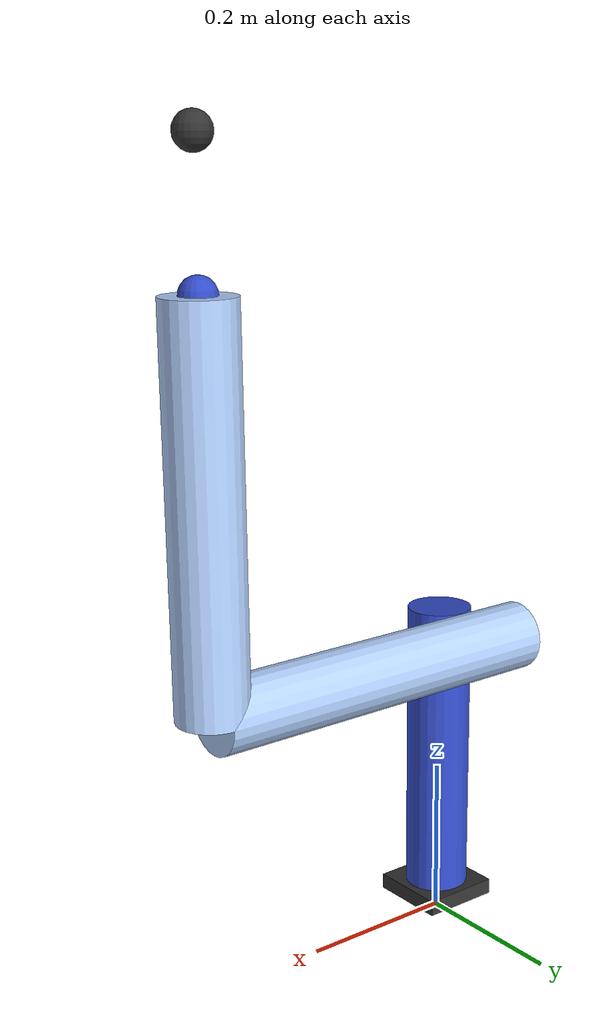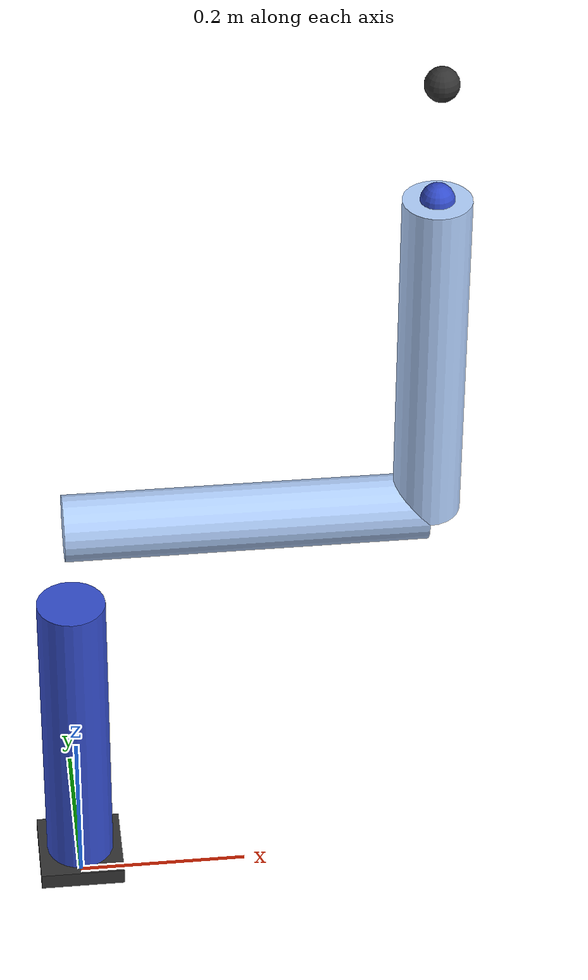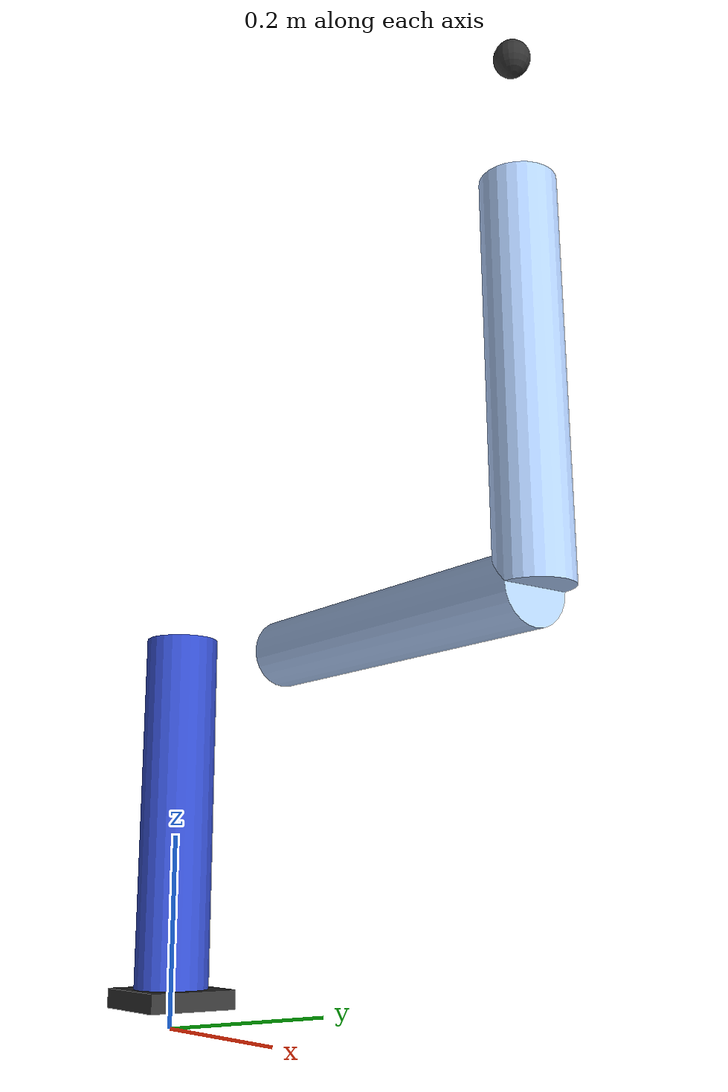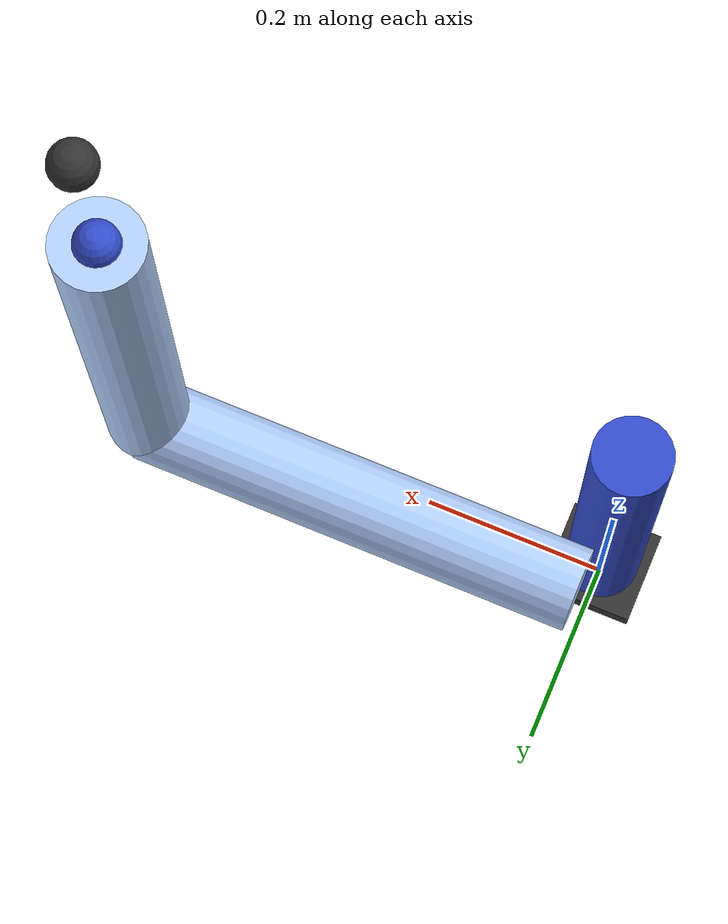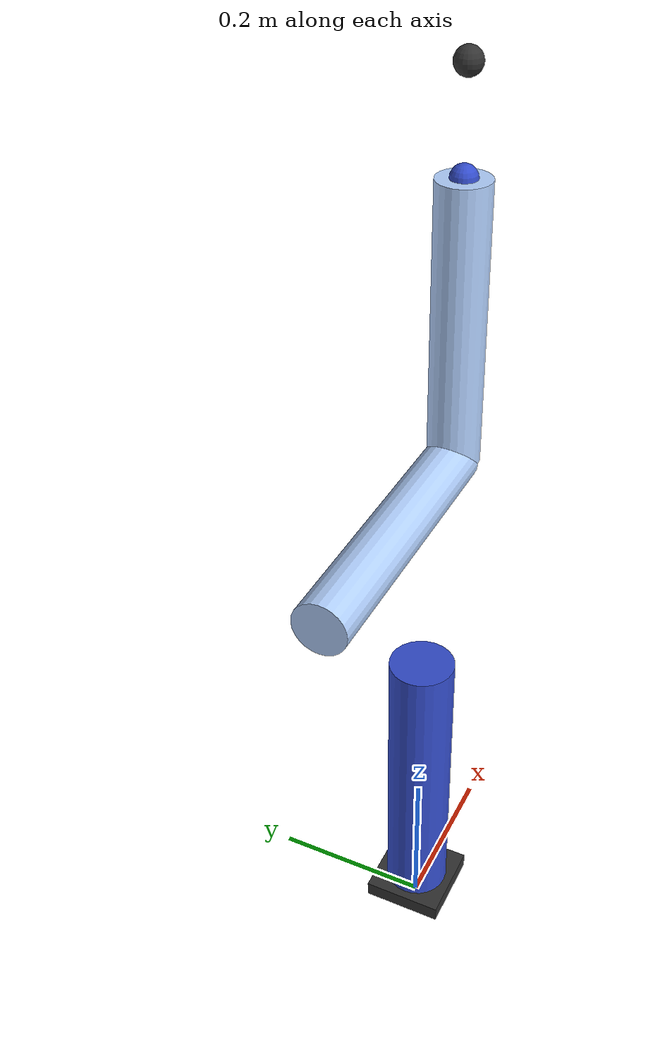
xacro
<?xml version="1.0"?>
<robot xmlns:xacro="http://www.ros.org/wiki/xacro" name="my_arm">
    <xacro:arg name="initial_positions_file" default="initial_positions.yaml" />

    <!-- Import my_arm urdf file -->
    <xacro:include filename="$(find my_arm_description)/urdf/my_arm_puma.urdf.xacro" />

    <!-- Import control_xacro -->
    <xacro:include filename="my_arm.ros2_control.xacro" />

    <xacro:my_arm_ros2_control name="FakeSystem" initial_positions_file="$(arg initial_positions_file)"/>

</robot>

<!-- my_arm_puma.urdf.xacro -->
<robot xmlns:xacro="http://ros.org/wiki/xacro" name="my_arm">

  <xacro:arg name="ros2_control_params" default=""/>

  <!-- =========================
       Parameters
       ========================= -->
  <xacro:arg name="L1" default="0.4"/>
  <xacro:arg name="L2" default="0.4318"/>
  <xacro:arg name="L3" default="0.43208"/>
  <xacro:arg name="d3" default="0.1397"/>

  <!-- Spherical wrist: set these to 0 -->
  <xacro:arg name="L4" default="0.0"/>
  <xacro:arg name="L5" default="0.0"/>
  <xacro:arg name="L6" default="0.0"/>

  <!-- Sizes -->
  <xacro:arg name="r_link" default="0.04"/>
  <xacro:arg name="base_x" default="0.10"/>
  <xacro:arg name="base_y" default="0.10"/>
  <xacro:arg name="base_z" default="0.02"/>

  <!-- Masses (kg) -->
  <xacro:arg name="m_base" default="1.0"/>
  <xacro:arg name="m_link" default="0.3"/>
  <xacro:arg name="m_wrist" default="0.05"/>

  <!-- Joint limits -->
  <xacro:arg name="joint_vel" default="2.0"/>
  <xacro:arg name="joint_effort" default="5.0"/>

  <xacro:property name="L1" value="$(arg L1)"/>
  <xacro:property name="L2" value="$(arg L2)"/>
  <xacro:property name="L3" value="$(arg L3)"/>
  <xacro:property name="d3" value="$(arg d3)"/>
  <xacro:property name="r"  value="$(arg r_link)"/>

  <xacro:property name="r_wrist" value="${0.5 * $(arg r_link)}"/>

  <!-- =========================
       Inertial macros
       ========================= -->
  <xacro:macro name="inertial_box" params="mass x y z">
    <inertial>
      <mass value="${mass}"/>
      <inertia ixx="${mass*(y*y + z*z)/12.0}" ixy="0.0" ixz="0.0"
               iyy="${mass*(x*x + z*z)/12.0}" iyz="0.0"
               izz="${mass*(x*x + y*y)/12.0}"/>
    </inertial>
  </xacro:macro>

  <xacro:macro name="inertial_cylinder_z" params="mass radius length">
    <inertial>
      <mass value="${mass}"/>
      <inertia ixx="${mass*(3*radius*radius + length*length)/12.0}" ixy="0.0" ixz="0.0"
               iyy="${mass*(3*radius*radius + length*length)/12.0}" iyz="0.0"
               izz="${mass*(radius*radius)/2.0}"/>
    </inertial>
  </xacro:macro>

  <xacro:macro name="inertial_cylinder_x" params="mass radius length">
    <inertial>
      <mass value="${mass}"/>
      <inertia ixx="${mass*(radius*radius)/2.0}" ixy="0.0" ixz="0.0"
               iyy="${mass*(3*radius*radius + length*length)/12.0}" iyz="0.0"
               izz="${mass*(3*radius*radius + length*length)/12.0}"/>
    </inertial>
  </xacro:macro>

  <xacro:macro name="inertial_sphere" params="mass radius">
    <inertial>
      <mass value="${mass}"/>
      <inertia ixx="${0.4*mass*radius*radius}" ixy="0.0" ixz="0.0"
               iyy="${0.4*mass*radius*radius}" iyz="0.0"
               izz="${0.4*mass*radius*radius}"/>
    </inertial>
  </xacro:macro>

  <!-- =========================
       Materials
       ========================= -->
  <material name="dark"><color rgba="0.2 0.2 0.2 1.0"/></material>
  <material name="pale_blue"><color rgba="0.70 0.82 1.00 1.0"/></material>
  <material name="blue"><color rgba="0.2 0.3 0.8 1.0"/></material>

  <!-- =========================
       World + base
       ========================= -->
  <link name="world"/>

  <joint name="world_to_base" type="fixed">
    <parent link="world"/>
    <child link="base_link"/>
    <origin xyz="0 0 $(arg base_z)" rpy="0 0 0"/>
  </joint>

  <link name="base_link">
    <visual>
      <origin xyz="0 0 ${$(arg base_z)/2.0}" rpy="0 0 0"/>
      <geometry><box size="$(arg base_x) $(arg base_y) $(arg base_z)"/></geometry>
      <material name="dark"/>
    </visual>
    <collision>
      <origin xyz="0 0 ${$(arg base_z)/2.0}" rpy="0 0 0"/>
      <geometry><box size="$(arg base_x) $(arg base_y) $(arg base_z)"/></geometry>
    </collision>
    <xacro:inertial_box mass="$(arg m_base)" x="$(arg base_x)" y="$(arg base_y)" z="$(arg base_z)"/>
  </link>

  <!-- =========================
       Links (KINEMATIC frames are simple; visuals oriented for nice zero pose)
       ========================= -->

  <!-- link1: cylinder along +Z -->
  <link name="link1">
    <visual>
      <origin xyz="0 0 ${L1/2.0}" rpy="0 0 0"/>
      <geometry><cylinder radius="${r}" length="${L1}"/></geometry>
      <material name="blue"/>
    </visual>
    <collision>
      <origin xyz="0 0 ${L1/2.0}" rpy="0 0 0"/>
      <geometry><cylinder radius="${r}" length="${L1}"/></geometry>
    </collision>
    <xacro:inertial_cylinder_z mass="$(arg m_link)" radius="${r}" length="${L1}"/>
  </link>

  <!-- link2: visually along +X, but link frame is NOT rotated (kinematics stay simple) -->
  <link name="link2">
    <visual>
      <origin xyz="${L2/2.0} 0 0" rpy="0 1.57079632679 0"/>
      <geometry><cylinder radius="${r}" length="${L2}"/></geometry>
      <material name="pale_blue"/>
    </visual>
    <collision>
      <origin xyz="${L2/2.0} 0 0" rpy="0 1.57079632679 0"/>
      <geometry><cylinder radius="${r}" length="${L2}"/></geometry>
    </collision>
    <xacro:inertial_cylinder_x mass="$(arg m_link)" radius="${r}" length="${L2}"/>
  </link>

  <!-- link3: visually along +Z -->
  <link name="link3">
    <visual>
      <origin xyz="0 0 ${L3/2.0}" rpy="0 0 0"/>
      <geometry><cylinder radius="${r}" length="${L3}"/></geometry>
      <material name="pale_blue"/>
    </visual>
    <collision>
      <origin xyz="0 0 ${L3/2.0}" rpy="0 0 0"/>
      <geometry><cylinder radius="${r}" length="${L3}"/></geometry>
    </collision>
    <xacro:inertial_cylinder_z mass="$(arg m_link)" radius="${r}" length="${L3}"/>
  </link>

  <!-- Wrist links: spheres -->
  <xacro:macro name="wrist_link" params="name mass mat">
    <link name="${name}">
      <visual>
        <origin xyz="0 0 0" rpy="0 0 0"/>
        <geometry><sphere radius="${r_wrist}"/></geometry>
        <material name="${mat}"/>
      </visual>
      <collision>
        <origin xyz="0 0 0" rpy="0 0 0"/>
        <geometry><sphere radius="${r_wrist}"/></geometry>
      </collision>
      <xacro:inertial_sphere mass="${mass}" radius="${r_wrist}"/>
    </link>
  </xacro:macro>

  <xacro:wrist_link name="link4" mass="$(arg m_wrist)" mat="blue"/>
  <xacro:wrist_link name="link5" mass="$(arg m_wrist)" mat="blue"/>
  <xacro:wrist_link name="link6" mass="$(arg m_wrist)" mat="blue"/>

  <!-- =========================
       Joints (KINEMATICALLY SIMPLE)
       ========================= -->

  <!-- joint1: base yaw about +Z -->
  <joint name="joint1" type="revolute">
    <parent link="base_link"/>
    <child link="link1"/>
    <origin xyz="0 0 0" rpy="0 0 0"/>
    <axis xyz="0 0 1"/>
    <limit lower="-3.14159" upper="3.14159" effort="$(arg joint_effort)" velocity="$(arg joint_vel)"/>
    <dynamics damping="0.2" friction="0.0"/>
  </joint>

  <!-- joint2: shoulder pitch about +Y, located at top of link1 with lateral offset d3 -->
  <!-- IMPORTANT: rpy = 0 0 0 to keep kinematics consistent with analytic IK -->
  <joint name="joint2" type="revolute">
    <parent link="link1"/>
    <child link="link2"/>
    <origin xyz="0 ${d3} ${L1}" rpy="0 0 0"/>
    <axis xyz="0 1 0"/>
    <limit lower="-3.14159" upper="3.14159" effort="$(arg joint_effort)" velocity="$(arg joint_vel)"/>
    <dynamics damping="0.2" friction="0.0"/>
  </joint>

  <!-- joint3: elbow pitch about +Y at end of link2 (along +X) -->
  <!-- IMPORTANT: origin along +X because link2 is modeled as translating along +X in kinematics -->
  <joint name="joint3" type="revolute">
    <parent link="link2"/>
    <child link="link3"/>
    <origin xyz="${L2} 0 0" rpy="0 0 0"/>
    <axis xyz="0 1 0"/>
    <limit lower="-3.14159" upper="3.14159" effort="$(arg joint_effort)" velocity="$(arg joint_vel)"/>
    <dynamics damping="0.2" friction="0.0"/>
  </joint>

  <!-- joint4: wrist roll about +Z at end of link3 -->
  <joint name="joint4" type="revolute">
    <parent link="link3"/>
    <child link="link4"/>
    <origin xyz="0 0 ${L3}" rpy="0 0 0"/>
    <axis xyz="0 0 1"/>
    <limit lower="-3.14159" upper="3.14159" effort="$(arg joint_effort)" velocity="$(arg joint_vel)"/>
    <dynamics damping="0.2" friction="0.0"/>
  </joint>

  <!-- joint5: wrist pitch about +Y -->
  <joint name="joint5" type="revolute">
    <parent link="link4"/>
    <child link="link5"/>
    <origin xyz="0 0 0" rpy="0 0 0"/>
    <axis xyz="0 1 0"/>
    <limit lower="-3.14159" upper="3.14159" effort="$(arg joint_effort)" velocity="$(arg joint_vel)"/>
    <dynamics damping="0.2" friction="0.0"/>
  </joint>

  <!-- joint6: wrist roll about +Z -->
  <joint name="joint6" type="revolute">
    <parent link="link5"/>
    <child link="link6"/>
    <origin xyz="0 0 0" rpy="0 0 0"/>
    <axis xyz="0 0 1"/>
    <limit lower="-3.14159" upper="3.14159" effort="$(arg joint_effort)" velocity="$(arg joint_vel)"/>
    <dynamics damping="0.2" friction="0.0"/>
  </joint>

  <!-- =========================
     Tool / TCP frame
     ========================= -->

    <xacro:arg name="tool_z" default="0.15"/>
    <xacro:arg name="tool_radius" default="0.02"/>

    <xacro:property name="tool_z" value="$(arg tool_z)"/>
    <xacro:property name="tool_radius" value="$(arg tool_radius)"/>

    <link name="tool">
    <visual>
        <origin xyz="0 0 0" rpy="0 0 0"/>
        <geometry>
        <sphere radius="${tool_radius}"/>
        </geometry>
        <material name="dark"/>
    </visual>

    <collision>
        <origin xyz="0 0 0" rpy="0 0 0"/>
        <geometry>
        <sphere radius="${tool_radius}"/>
        </geometry>
    </collision>

    <xacro:inertial_sphere mass="0.001" radius="${tool_radius}"/>
    </link>

    <joint name="link6_to_tool" type="fixed">
    <parent link="link6"/>
    <child link="tool"/>
    <origin xyz="0 0 ${tool_z}" rpy="0 0 0"/>
    </joint>

  <!-- =========================
       ros2_control (gz_ros2_control)
       ========================= -->
  <ros2_control name="MyArmSystem" type="system">
    <hardware>
      <plugin>gz_ros2_control/GazeboSimSystem</plugin>
    </hardware>

    <joint name="joint1">
      <command_interface name="position"/>
      <state_interface name="position"/>
      <state_interface name="velocity"/>
    </joint>
    <joint name="joint2">
      <command_interface name="position"/>
      <state_interface name="position"/>
      <state_interface name="velocity"/>
    </joint>
    <joint name="joint3">
      <command_interface name="position"/>
      <state_interface name="position"/>
      <state_interface name="velocity"/>
    </joint>
    <joint name="joint4">
      <command_interface name="position"/>
      <state_interface name="position"/>
      <state_interface name="velocity"/>
    </joint>
    <joint name="joint5">
      <command_interface name="position"/>
      <state_interface name="position"/>
      <state_interface name="velocity"/>
    </joint>
    <joint name="joint6">
      <command_interface name="position"/>
      <state_interface name="position"/>
      <state_interface name="velocity"/>
    </joint>
  </ros2_control>

  <gazebo>
    <plugin name="gz_ros2_control::GazeboSimROS2ControlPlugin"
            filename="gz_ros2_control-system">
        <parameters>$(arg ros2_control_params)</parameters>
    </plugin>
  </gazebo>

  <gazebo reference="link1"><material>Gazebo/Blue</material></gazebo>
  <gazebo reference="link2"><material>Gazebo/Blue</material></gazebo>
  <gazebo reference="link3"><material>Gazebo/Blue</material></gazebo>

</robot>
